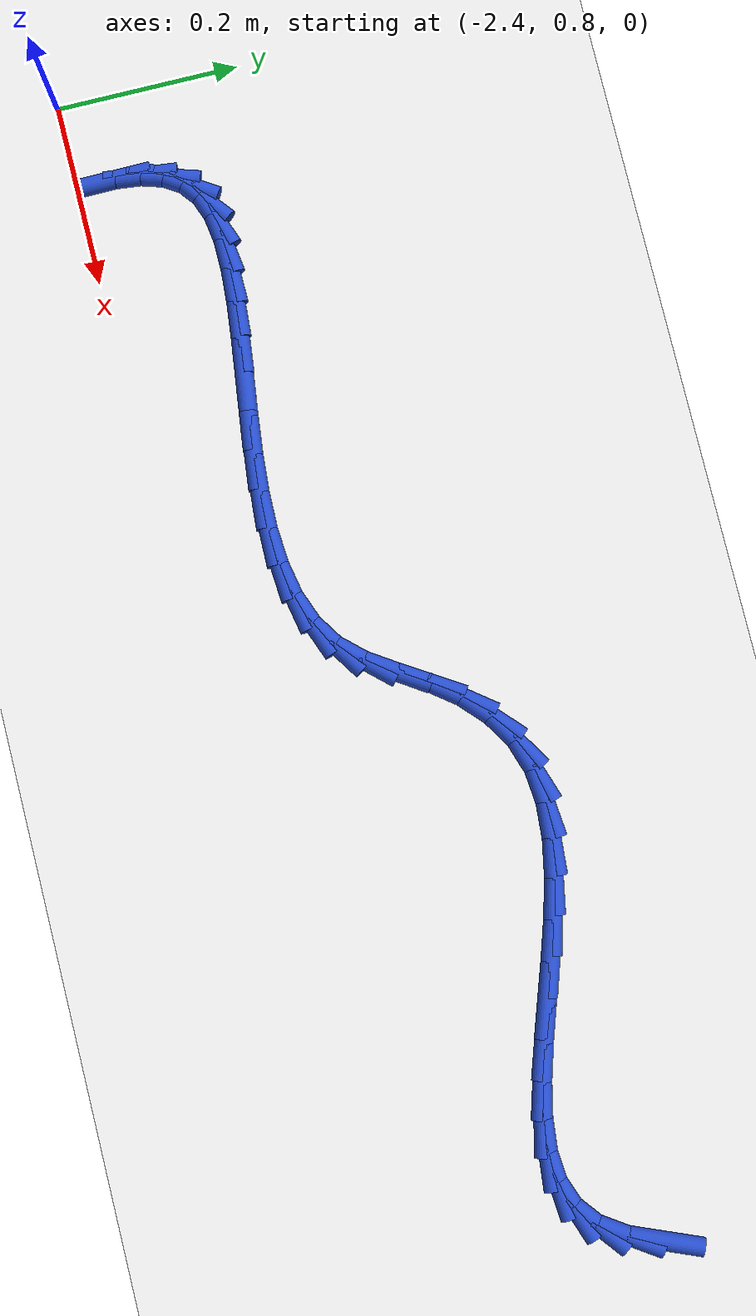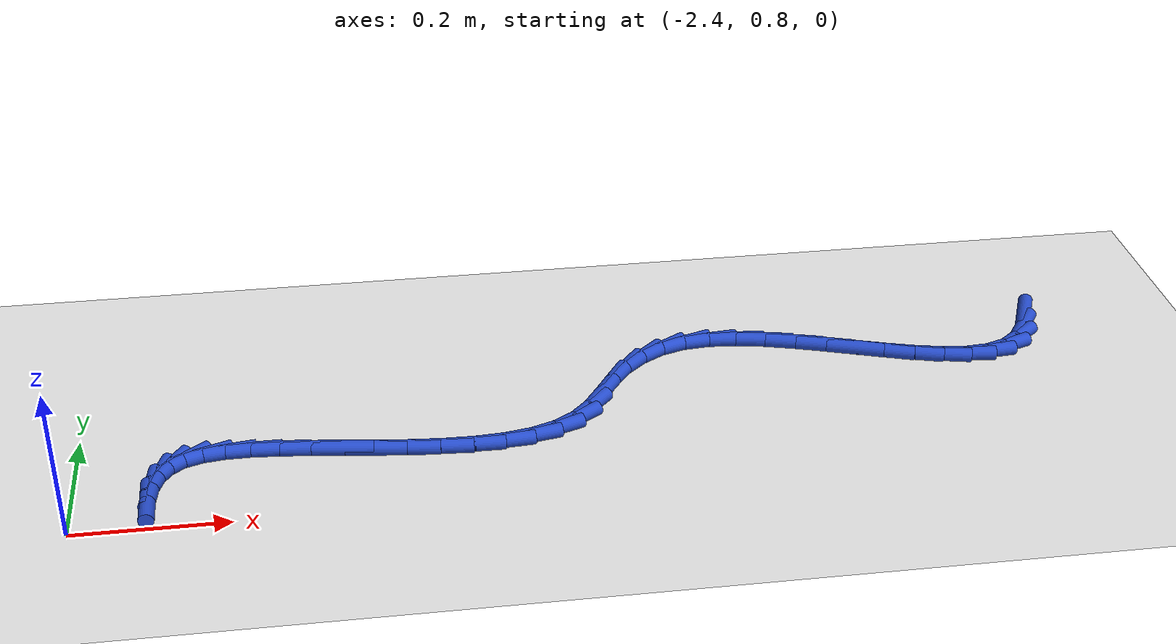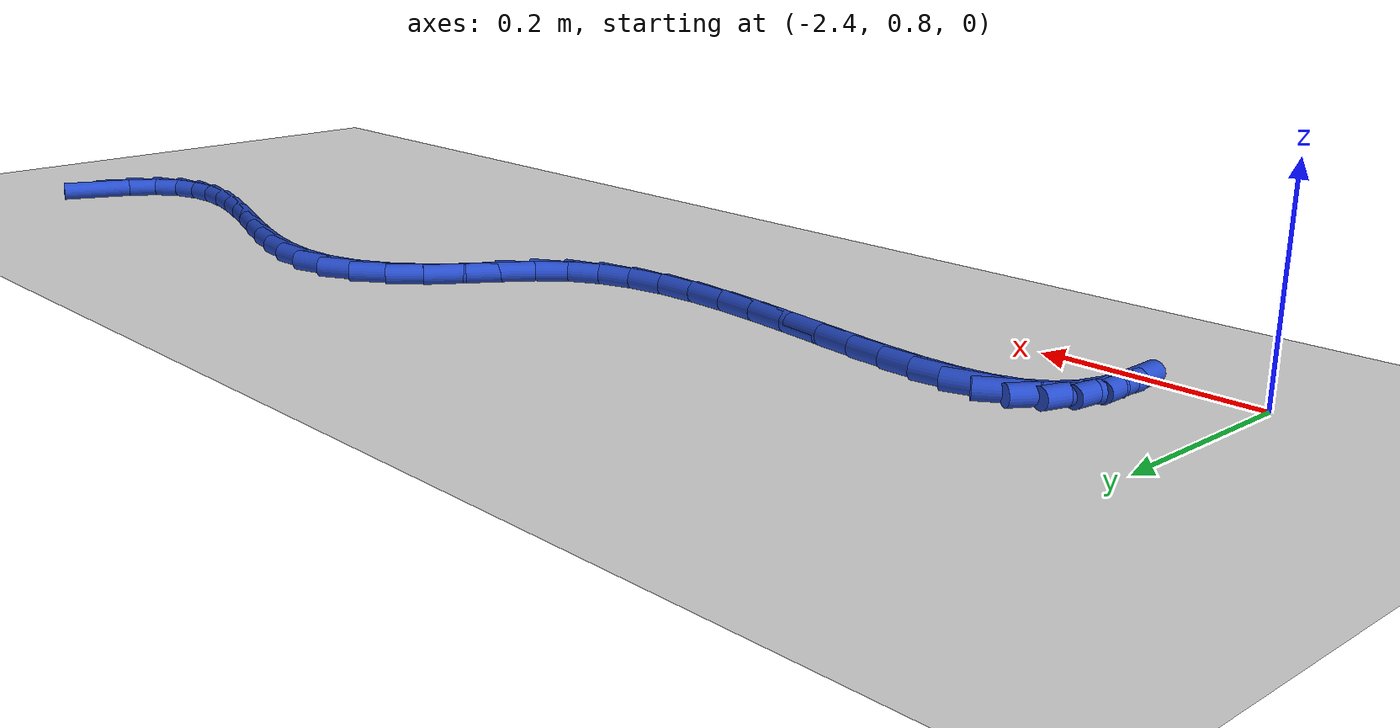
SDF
<sdf version="1.6">
 <world name="default">
  <model name="ground_plane">
   <static>1</static>
   <link name="link">
    <collision name="collision">
     <geometry><plane><normal>0 0 1</normal><size>100 100</size></plane></geometry>
     <surface><friction><ode><mu>100</mu><mu2>50</mu2></ode></friction></surface>
    </collision>
    <visual name="visual">
     <cast_shadows>0</cast_shadows>
     <geometry><plane><normal>0 0 1</normal><size>100 100</size></plane></geometry>
     <material>
      <script><uri>file://media/materials/scripts/gazebo.material</uri><name>Gazebo/WhiteGlow</name></script>
     </material>
    </visual>
   </link>
  </model>
  <model name="line">
   <link name="link_60">
    <pose>-1.0822120645693871 1.1355636832226774 0.01 0 1.57 1.1784971911372524</pose>
    <collision name="collision">
     <geometry><cylinder><radius>0.01</radius><length>0.08</length></cylinder></geometry>
    </collision>
    <visual name="visual">
     <material>
      <script><name>Gazebo/Blue</name><uri>file://media/materials/scripts/gazebo.material</uri></script>
     </material>
     <geometry><cylinder><radius>0.01</radius><length>0.08</length></cylinder></geometry>
    </visual>
   </link>
   <link name="link_61">
    <pose>-1.0970010309279314 1.099819532326482 0.01 0 1.57 0.9788855205143832</pose>
    <collision name="collision">
     <geometry><cylinder><radius>0.01</radius><length>0.08</length></cylinder></geometry>
    </collision>
    <visual name="visual">
     <material>
      <script><name>Gazebo/Blue</name><uri>file://media/materials/scripts/gazebo.material</uri></script>
     </material>
     <geometry><cylinder><radius>0.01</radius><length>0.08</length></cylinder></geometry>
    </visual>
   </link>
   <link name="link_62">
    <pose>-1.1158007946173771 1.0718572844889462 0.01 0 1.57 0.6696522102916078</pose>
    <collision name="collision">
     <geometry><cylinder><radius>0.01</radius><length>0.08</length></cylinder></geometry>
    </collision>
    <visual name="visual">
     <material>
      <script><name>Gazebo/Blue</name><uri>file://media/materials/scripts/gazebo.material</uri></script>
     </material>
     <geometry><cylinder><radius>0.01</radius><length>0.08</length></cylinder></geometry>
    </visual>
   </link>
   <link name="link_63">
    <pose>-1.139102505309041 1.0534095940477959 0.01 0 1.57 0.3409156343845132</pose>
    <collision name="collision">
     <geometry><cylinder><radius>0.01</radius><length>0.08</length></cylinder></geometry>
    </collision>
    <visual name="visual">
     <material>
      <script><name>Gazebo/Blue</name><uri>file://media/materials/scripts/gazebo.material</uri></script>
     </material>
     <geometry><cylinder><radius>0.01</radius><length>0.08</length></cylinder></geometry>
    </visual>
   </link>
   <link name="link_64">
    <pose>-1.1665389121778005 1.0436760507791685 0.01 0 1.57 0.07646337659949173</pose>
    <collision name="collision">
     <geometry><cylinder><radius>0.01</radius><length>0.08</length></cylinder></geometry>
    </collision>
    <visual name="visual">
     <material>
      <script><name>Gazebo/Blue</name><uri>file://media/materials/scripts/gazebo.material</uri></script>
     </material>
     <geometry><cylinder><radius>0.01</radius><length>0.08</length></cylinder></geometry>
    </visual>
   </link>
   <link name="link_65">
    <pose>-1.1975542254365463 1.041299882522004 0.01 0 1.57 -0.10608094852840963</pose>
    <collision name="collision">
     <geometry><cylinder><radius>0.01</radius><length>0.08</length></cylinder></geometry>
    </collision>
    <visual name="visual">
     <material>
      <script><name>Gazebo/Blue</name><uri>file://media/materials/scripts/gazebo.material</uri></script>
     </material>
     <geometry><cylinder><radius>0.01</radius><length>0.08</length></cylinder></geometry>
    </visual>
   </link>
   <link name="link_66">
    <pose>-1.2315926552981704 1.0449243171152431 0.01 0 1.57 -0.2227341845248011</pose>
    <collision name="collision">
     <geometry><cylinder><radius>0.01</radius><length>0.08</length></cylinder></geometry>
    </collision>
    <visual name="visual">
     <material>
      <script><name>Gazebo/Blue</name><uri>file://media/materials/scripts/gazebo.material</uri></script>
     </material>
     <geometry><cylinder><radius>0.01</radius><length>0.08</length></cylinder></geometry>
    </visual>
   </link>
   <link name="link_67">
    <pose>-1.2680984119755623 1.053192582397827 0.01 0 1.57 -0.2921763000739865</pose>
    <collision name="collision">
     <geometry><cylinder><radius>0.01</radius><length>0.08</length></cylinder></geometry>
    </collision>
    <visual name="visual">
     <material>
      <script><name>Gazebo/Blue</name><uri>file://media/materials/scripts/gazebo.material</uri></script>
     </material>
     <geometry><cylinder><radius>0.01</radius><length>0.08</length></cylinder></geometry>
    </visual>
   </link>
   <link name="link_68">
    <pose>-1.3065157056816135 1.064747906208696 0.01 0 1.57 -0.32689934336442095</pose>
    <collision name="collision">
     <geometry><cylinder><radius>0.01</radius><length>0.08</length></cylinder></geometry>
    </collision>
    <visual name="visual">
     <material>
      <script><name>Gazebo/Blue</name><uri>file://media/materials/scripts/gazebo.material</uri></script>
     </material>
     <geometry><cylinder><radius>0.01</radius><length>0.08</length></cylinder></geometry>
    </visual>
   </link>
   <link name="link_69">
    <pose>-1.3462887466292144 1.078233516386791 0.01 0 1.57 -0.33356615541894824</pose>
    <collision name="collision">
     <geometry><cylinder><radius>0.01</radius><length>0.08</length></cylinder></geometry>
    </collision>
    <visual name="visual">
     <material>
      <script><name>Gazebo/Blue</name><uri>file://media/materials/scripts/gazebo.material</uri></script>
     </material>
     <geometry><cylinder><radius>0.01</radius><length>0.08</length></cylinder></geometry>
    </visual>
   </link>
   <link name="link_70">
    <pose>-1.3868617450312566 1.0922926407710538 0.01 0 1.57 -0.314459841499243</pose>
    <collision name="collision">
     <geometry><cylinder><radius>0.01</radius><length>0.08</length></cylinder></geometry>
    </collision>
    <visual name="visual">
     <material>
      <script><name>Gazebo/Blue</name><uri>file://media/materials/scripts/gazebo.material</uri></script>
     </material>
     <geometry><cylinder><radius>0.01</radius><length>0.08</length></cylinder></geometry>
    </visual>
   </link>
   <link name="link_71">
    <pose>-1.4276789111006298 1.1055685072004242 0.01 0 1.57 -0.2682930315056576</pose>
    <collision name="collision">
     <geometry><cylinder><radius>0.01</radius><length>0.08</length></cylinder></geometry>
    </collision>
    <visual name="visual">
     <material>
      <script><name>Gazebo/Blue</name><uri>file://media/materials/scripts/gazebo.material</uri></script>
     </material>
     <geometry><cylinder><radius>0.01</radius><length>0.08</length></cylinder></geometry>
    </visual>
   </link>
   <link name="link_72">
    <pose>-1.4681844550502254 1.116704343513843 0.01 0 1.57 -0.19038520972658035</pose>
    <collision name="collision">
     <geometry><cylinder><radius>0.01</radius><length>0.08</length></cylinder></geometry>
    </collision>
    <visual name="visual">
     <material>
      <script><name>Gazebo/Blue</name><uri>file://media/materials/scripts/gazebo.material</uri></script>
     </material>
     <geometry><cylinder><radius>0.01</radius><length>0.08</length></cylinder></geometry>
    </visual>
   </link>
   <link name="link_73">
    <pose>-1.507822587092934 1.1243433775502516 0.01 0 1.57 -0.07276062858761857</pose>
    <collision name="collision">
     <geometry><cylinder><radius>0.01</radius><length>0.08</length></cylinder></geometry>
    </collision>
    <visual name="visual">
     <material>
      <script><name>Gazebo/Blue</name><uri>file://media/materials/scripts/gazebo.material</uri></script>
     </material>
     <geometry><cylinder><radius>0.01</radius><length>0.08</length></cylinder></geometry>
    </visual>
   </link>
   <link name="link_74">
    <pose>-1.5460375174416474 1.1271288371485908 0.01 0 1.57 0.09423635415098695</pose>
    <collision name="collision">
     <geometry><cylinder><radius>0.01</radius><length>0.08</length></cylinder></geometry>
    </collision>
    <visual name="visual">
     <material>
      <script><name>Gazebo/Blue</name><uri>file://media/materials/scripts/gazebo.material</uri></script>
     </material>
     <geometry><cylinder><radius>0.01</radius><length>0.08</length></cylinder></geometry>
    </visual>
   </link>
   <link name="link_75">
    <pose>-1.5822734563092546 1.1237039501478006 0.01 0 1.57 0.31483431000690837</pose>
    <collision name="collision">
     <geometry><cylinder><radius>0.01</radius><length>0.08</length></cylinder></geometry>
    </collision>
    <visual name="visual">
     <material>
      <script><name>Gazebo/Blue</name><uri>file://media/materials/scripts/gazebo.material</uri></script>
     </material>
     <geometry><cylinder><radius>0.01</radius><length>0.08</length></cylinder></geometry>
    </visual>
   </link>
   <link name="link_76">
    <pose>-1.6159742591710073 1.1127287387174178 0.01 0 1.57 0.5498756850519348</pose>
    <collision name="collision">
     <geometry><cylinder><radius>0.01</radius><length>0.08</length></cylinder></geometry>
    </collision>
    <visual name="visual">
     <material>
      <script><name>Gazebo/Blue</name><uri>file://media/materials/scripts/gazebo.material</uri></script>
     </material>
     <geometry><cylinder><radius>0.01</radius><length>0.08</length></cylinder></geometry>
    </visual>
   </link>
   <link name="link_77">
    <pose>-1.646560158764855 1.0939815953803158 0.01 0 1.57 0.7484829596003867</pose>
    <collision name="collision">
     <geometry><cylinder><radius>0.01</radius><length>0.08</length></cylinder></geometry>
    </collision>
    <visual name="visual">
     <material>
      <script><name>Gazebo/Blue</name><uri>file://media/materials/scripts/gazebo.material</uri></script>
     </material>
     <geometry><cylinder><radius>0.01</radius><length>0.08</length></cylinder></geometry>
    </visual>
   </link>
   <link name="link_78">
    <pose>-1.6734133606384975 1.0690412324804133 0.01 0 1.57 0.9147731280634256</pose>
    <collision name="collision">
     <geometry><cylinder><radius>0.01</radius><length>0.08</length></cylinder></geometry>
    </collision>
    <visual name="visual">
     <material>
      <script><name>Gazebo/Blue</name><uri>file://media/materials/scripts/gazebo.material</uri></script>
     </material>
     <geometry><cylinder><radius>0.01</radius><length>0.08</length></cylinder></geometry>
    </visual>
   </link>
   <link name="link_79">
    <pose>-1.696006985462086 1.0396894205603493 0.01 0 1.57 1.0081198870486294</pose>
    <collision name="collision">
     <geometry><cylinder><radius>0.01</radius><length>0.08</length></cylinder></geometry>
    </collision>
    <visual name="visual">
     <material>
      <script><name>Gazebo/Blue</name><uri>file://media/materials/scripts/gazebo.material</uri></script>
     </material>
     <geometry><cylinder><radius>0.01</radius><length>0.08</length></cylinder></geometry>
    </visual>
   </link>
   <link name="link_80">
    <pose>-1.7156776514218863 1.0085000172722427 0.01 0 1.57 0.983408410773953</pose>
    <collision name="collision">
     <geometry><cylinder><radius>0.01</radius><length>0.08</length></cylinder></geometry>
    </collision>
    <visual name="visual">
     <material>
      <script><name>Gazebo/Blue</name><uri>file://media/materials/scripts/gazebo.material</uri></script>
     </material>
     <geometry><cylinder><radius>0.01</radius><length>0.08</length></cylinder></geometry>
    </visual>
   </link>
   <link name="link_81">
    <pose>-1.7354694995557867 0.9787726697196207 0.01 0 1.57 0.8259656421179257</pose>
    <collision name="collision">
     <geometry><cylinder><radius>0.01</radius><length>0.08</length></cylinder></geometry>
    </collision>
    <visual name="visual">
     <material>
      <script><name>Gazebo/Blue</name><uri>file://media/materials/scripts/gazebo.material</uri></script>
     </material>
     <geometry><cylinder><radius>0.01</radius><length>0.08</length></cylinder></geometry>
    </visual>
   </link>
   <link name="link_82">
    <pose>-1.7584762272893177 0.9538192517772164 0.01 0 1.57 0.5776786630187335</pose>
    <collision name="collision">
     <geometry><cylinder><radius>0.01</radius><length>0.08</length></cylinder></geometry>
    </collision>
    <visual name="visual">
     <material>
      <script><name>Gazebo/Blue</name><uri>file://media/materials/scripts/gazebo.material</uri></script>
     </material>
     <geometry><cylinder><radius>0.01</radius><length>0.08</length></cylinder></geometry>
    </visual>
   </link>
   <link name="link_83">
    <pose>-1.7864957542368634 0.935554562860843 0.01 0 1.57 0.35921316115025365</pose>
    <collision name="collision">
     <geometry><cylinder><radius>0.01</radius><length>0.08</length></cylinder></geometry>
    </collision>
    <visual name="visual">
     <material>
      <script><name>Gazebo/Blue</name><uri>file://media/materials/scripts/gazebo.material</uri></script>
     </material>
     <geometry><cylinder><radius>0.01</radius><length>0.08</length></cylinder></geometry>
    </visual>
   </link>
   <link name="link_84">
    <pose>-1.8189748870523739 0.9233584925902072 0.01 0 1.57 0.1917464228404119</pose>
    <collision name="collision">
     <geometry><cylinder><radius>0.01</radius><length>0.08</length></cylinder></geometry>
    </collision>
    <visual name="visual">
     <material>
      <script><name>Gazebo/Blue</name><uri>file://media/materials/scripts/gazebo.material</uri></script>
     </material>
     <geometry><cylinder><radius>0.01</radius><length>0.08</length></cylinder></geometry>
    </visual>
   </link>
   <link name="link_85">
    <pose>-1.8551120508926737 0.9163431320143678 0.01 0 1.57 0.06970752230836143</pose>
    <collision name="collision">
     <geometry><cylinder><radius>0.01</radius><length>0.08</length></cylinder></geometry>
    </collision>
    <visual name="visual">
     <material>
      <script><name>Gazebo/Blue</name><uri>file://media/materials/scripts/gazebo.material</uri></script>
     </material>
     <geometry><cylinder><radius>0.01</radius><length>0.08</length></cylinder></geometry>
    </visual>
   </link>
   <link name="link_86">
    <pose>-1.894105670914587 0.913620572182384 0.01 0 1.57 -0.01662104836127536</pose>
    <collision name="collision">
     <geometry><cylinder><radius>0.01</radius><length>0.08</length></cylinder></geometry>
    </collision>
    <visual name="visual">
     <material>
      <script><name>Gazebo/Blue</name><uri>file://media/materials/scripts/gazebo.material</uri></script>
     </material>
     <geometry><cylinder><radius>0.01</radius><length>0.08</length></cylinder></geometry>
    </visual>
   </link>
   <link name="link_87">
    <pose>-1.9351541722749386 0.9143029041433145 0.01 0 1.57 -0.07548697767557262</pose>
    <collision name="collision">
     <geometry><cylinder><radius>0.01</radius><length>0.08</length></cylinder></geometry>
    </collision>
    <visual name="visual">
     <material>
      <script><name>Gazebo/Blue</name><uri>file://media/materials/scripts/gazebo.material</uri></script>
     </material>
     <geometry><cylinder><radius>0.01</radius><length>0.08</length></cylinder></geometry>
    </visual>
   </link>
   <link name="link_88">
    <pose>-1.9774559801305525 0.9175022189462183 0.01 0 1.57 -0.1124589139900273</pose>
    <collision name="collision">
     <geometry><cylinder><radius>0.01</radius><length>0.08</length></cylinder></geometry>
    </collision>
    <visual name="visual">
     <material>
      <script><name>Gazebo/Blue</name><uri>file://media/materials/scripts/gazebo.material</uri></script>
     </material>
     <geometry><cylinder><radius>0.01</radius><length>0.08</length></cylinder></geometry>
    </visual>
   </link>
   <link name="link_89">
    <pose>-2.0202095196382537 0.9223306076401543 0.01 0 1.57 -0.13059835374871087</pose>
    <collision name="collision">
     <geometry><cylinder><radius>0.01</radius><length>0.08</length></cylinder></geometry>
    </collision>
    <visual name="visual">
     <material>
      <script><name>Gazebo/Blue</name><uri>file://media/materials/scripts/gazebo.material</uri></script>
     </material>
     <geometry><cylinder><radius>0.01</radius><length>0.08</length></cylinder></geometry>
    </visual>
   </link>
   <link name="link_90">
    <pose>-2.0626132159548662 0.9279001612741814 0.01 0 1.57 -0.13070535076521012</pose>
    <collision name="collision">
     <geometry><cylinder><radius>0.01</radius><length>0.08</length></cylinder></geometry>
    </collision>
    <visual name="visual">
     <material>
      <script><name>Gazebo/Blue</name><uri>file://media/materials/scripts/gazebo.material</uri></script>
     </material>
     <geometry><cylinder><radius>0.01</radius><length>0.08</length></cylinder></geometry>
    </visual>
   </link>
   <link name="link_91">
    <pose>-2.1038654942372155 0.9333229708973589 0.01 0 1.57 -0.1111993447027711</pose>
    <collision name="collision">
     <geometry><cylinder><radius>0.01</radius><length>0.08</length></cylinder></geometry>
    </collision>
    <visual name="visual">
     <material>
      <script><name>Gazebo/Blue</name><uri>file://media/materials/scripts/gazebo.material</uri></script>
     </material>
     <geometry><cylinder><radius>0.01</radius><length>0.08</length></cylinder></geometry>
    </visual>
   </link>
   <link name="link_92">
    <pose>-2.1431647796421247 0.9377111275587451 0.01 0 1.57 -0.06736579263631294</pose>
    <collision name="collision">
     <geometry><cylinder><radius>0.01</radius><length>0.08</length></cylinder></geometry>
    </collision>
    <visual name="visual">
     <material>
      <script><name>Gazebo/Blue</name><uri>file://media/materials/scripts/gazebo.material</uri></script>
     </material>
     <geometry><cylinder><radius>0.01</radius><length>0.08</length></cylinder></geometry>
    </visual>
   </link>
   <link name="link_93">
    <pose>-2.1797094973264204 0.9401767223073997 0.01 0 1.57 0.010454029924157001</pose>
    <collision name="collision">
     <geometry><cylinder><radius>0.01</radius><length>0.08</length></cylinder></geometry>
    </collision>
    <visual name="visual">
     <material>
      <script><name>Gazebo/Blue</name><uri>file://media/materials/scripts/gazebo.material</uri></script>
     </material>
     <geometry><cylinder><radius>0.01</radius><length>0.08</length></cylinder></geometry>
    </visual>
   </link>
   <link name="link_94">
    <pose>-2.212698072446924 0.9398318461923808 0.01 0 1.57 0.14029250059823128</pose>
    <collision name="collision">
     <geometry><cylinder><radius>0.01</radius><length>0.08</length></cylinder></geometry>
    </collision>
    <visual name="visual">
     <material>
      <script><name>Gazebo/Blue</name><uri>file://media/materials/scripts/gazebo.material</uri></script>
     </material>
     <geometry><cylinder><radius>0.01</radius><length>0.08</length></cylinder></geometry>
    </visual>
   </link>
   <link name="link_95">
    <pose>-2.241328930160462 0.9357885902627479 0.01 0 1.57 0.3523197096792181</pose>
    <collision name="collision">
     <geometry><cylinder><radius>0.01</radius><length>0.08</length></cylinder></geometry>
    </collision>
    <visual name="visual">
     <material>
      <script><name>Gazebo/Blue</name><uri>file://media/materials/scripts/gazebo.material</uri></script>
     </material>
     <geometry><cylinder><radius>0.01</radius><length>0.08</length></cylinder></geometry>
    </visual>
   </link>
   <link name="link_96">
    <pose>-2.2648004956238594 0.9271590455675595 0.01 0 1.57 0.6680884084206822</pose>
    <collision name="collision">
     <geometry><cylinder><radius>0.01</radius><length>0.08</length></cylinder></geometry>
    </collision>
    <visual name="visual">
     <material>
      <script><name>Gazebo/Blue</name><uri>file://media/materials/scripts/gazebo.material</uri></script>
     </material>
     <geometry><cylinder><radius>0.01</radius><length>0.08</length></cylinder></geometry>
    </visual>
   </link>
   <link name="link_97">
    <pose>-2.2824756620468176 0.9132107331966867 0.01 0 1.57 1.002965338096797</pose>
    <collision name="collision">
     <geometry><cylinder><radius>0.01</radius><length>0.08</length></cylinder></geometry>
    </collision>
    <visual name="visual">
     <material>
      <script><name>Gazebo/Blue</name><uri>file://media/materials/scripts/gazebo.material</uri></script>
     </material>
     <geometry><cylinder><radius>0.01</radius><length>0.08</length></cylinder></geometry>
    </visual>
   </link>
   <link name="link_98">
    <pose>-2.294663327773145 0.8941051935588201 0.01 0 1.57 1.2711829105064412</pose>
    <collision name="collision">
     <geometry><cylinder><radius>0.01</radius><length>0.08</length></cylinder></geometry>
    </collision>
    <visual name="visual">
     <material>
      <script><name>Gazebo/Blue</name><uri>file://media/materials/scripts/gazebo.material</uri></script>
     </material>
     <geometry><cylinder><radius>0.01</radius><length>0.08</length></cylinder></geometry>
    </visual>
   </link>
   <link name="link_99">
    <pose>-2.3020099557166547 0.8703229814485697 0.01 0 1.57 1.4585925332214793</pose>
    <collision name="collision">
     <geometry><cylinder><radius>0.01</radius><length>0.08</length></cylinder></geometry>
    </collision>
    <visual name="visual">
     <material>
      <script><name>Gazebo/Blue</name><uri>file://media/materials/scripts/gazebo.material</uri></script>
     </material>
     <geometry><cylinder><radius>0.01</radius><length>0.08</length></cylinder></geometry>
    </visual>
   </link>
   <link name="link_100">
    <pose>-2.305162426795398 0.8423450466942 0.01 0 1.57 -1.5583396931494262</pose>
    <collision name="collision">
     <geometry><cylinder><radius>0.01</radius><length>0.08</length></cylinder></geometry>
    </collision>
    <visual name="visual">
     <material>
      <script><name>Gazebo/Blue</name><uri>file://media/materials/scripts/gazebo.material</uri></script>
     </material>
     <geometry><cylinder><radius>0.01</radius><length>0.08</length></cylinder></geometry>
    </visual>
   </link>
  </model>
 </world>
</sdf>
